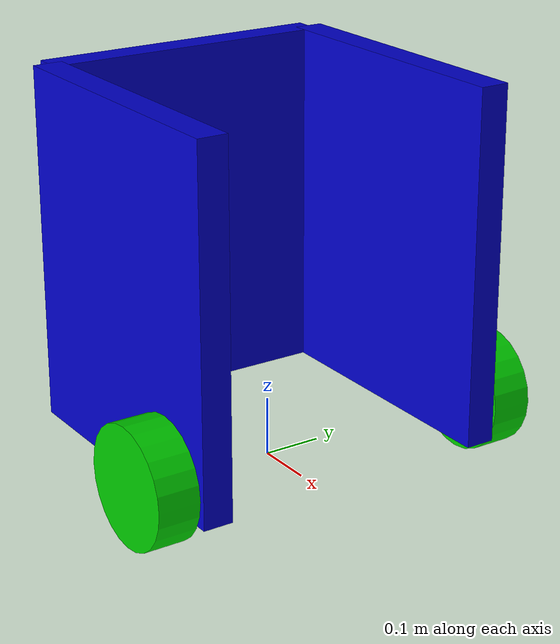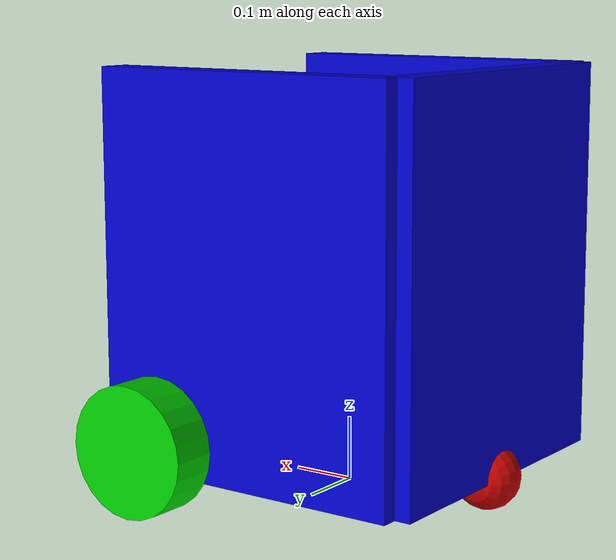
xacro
<?xml version="1.0"?>
<robot name="myrobot">

    <material name="blue">
        <color rgba="0 0 0.8 1"/>
    </material>

    <material name="white">
        <color rgba="1 1 1 1"/>
    </material>

    <material name="green">
        <color rgba="0 0.8 0 1"/>
    </material>

    <material name="red">
        <color rgba="0.8 0 0 1"/>
    </material>

    <link name = "base_link">
        <inertial>
            <origin xyz="0 0 0" rpy="0 0 0"/>
            <mass value="3.978"/>
            <inertia ixx="0.021858680" ixy="0.0" ixz="0.010020353"
                    iyy="0.078572349" iyz="-0.0"
                    izz="0.091971324"/>
        </inertial>

        <!--Right Panel-->
        <visual>
            <origin xyz="0 -0.25 0.35" rpy="0 0 0" />
            <geometry>
                <box size="0.5 0.05 0.6" />
            </geometry>
            <material name="blue" />
        </visual>
        <collision>
            <origin xyz="0 -0.25 0.35" rpy="0 0 0" />
            <geometry>
                <box size="0.5 0.05 0.6" />
            </geometry>
            <material name="blue" />
        </collision>

        <!--Left Panel-->
        <visual>
            <origin xyz="0 0.25 0.35" rpy="0 0 0" />
            <geometry>
                <box size="0.5 0.05 0.6" />
            </geometry>
            <material name="blue" />
        </visual>
        <collision>
            <origin xyz="0 0.25 0.35" rpy="0 0 0" />
            <geometry>
                <box size="0.5 0.05 0.6" />
            </geometry>
            <material name="blue" />
        </collision>

        <!--Back Panel-->
        <visual>
            <origin xyz="-0.25 0 0.35" rpy="0 0 1.57" />
            <geometry>
                <box size="0.5 0.05 0.6" />
            </geometry>
            <material name="blue" />
        </visual>
        <collision>
            <origin xyz="-0.25 0 0.35" rpy="0 0 1.57" />
            <geometry>
                <box size="0.5 0.05 0.6" />
            </geometry>
            <material name="blue" />
        </collision>
    </link>

    <!--Right Wheel-->
    <link name="right_wheel">
        <visual>
            <geometry>
                <cylinder length="0.070" radius="0.1"/>
            </geometry>
            <origin rpy="1.57075 0 0" xyz="0 0 0"/>
            <material name="green"/>
        </visual>
        <collision>
            <origin rpy="1.57075 0 0" xyz="0 0 0" />
            <geometry>
                <cylinder length="0.070" radius="0.1"/>
            </geometry>
            <material name="green" />
        </collision>
         <inertial>
            <origin xyz="0 0 0" rpy="0 0 0"/>
            <mass value="3.978"/>
            <inertia ixx="0.021858680" ixy="0.0" ixz="0.010020353"
                    iyy="0.078572349" iyz="-0.0"
                    izz="0.091971324"/>
        </inertial>

    </link>

    <joint name = "right_wheel_joint"  type = "continuous">
        <parent link="base_link"/>
        <child link="right_wheel"/>
        <origin xyz="0.15 0.315 0.1" rpy="0 0 0" />
        <axis xyz="0 1 0" rpy="0 0 0" />
    </joint>

    <!--Left Wheel-->
    <link name="left_wheel">
        <visual>
            <geometry>
                <cylinder length="0.070" radius="0.1"/>
            </geometry>
            <origin rpy="1.57075 0 0" xyz="0 0 0"/>
            <material name="green"/>
        </visual>
        <collision>
            <origin rpy="1.57075 0 0" xyz="0 0 0" />
            <geometry>
                <cylinder length="0.070" radius="0.1"/>
            </geometry>
            <material name="green" />
        </collision>
         <inertial>
            <origin xyz="0 0 0" rpy="0 0 0"/>
            <mass value="3.978"/>
            <inertia ixx="0.021858680" ixy="0.0" ixz="0.010020353"
                    iyy="0.078572349" iyz="-0.0"
                    izz="0.091971324"/>
        </inertial>

    </link>

    <joint name = "left_wheel_joint"  type = "continuous">
        <parent link="base_link"/>
        <child link="left_wheel"/>
        <origin xyz="0.15 -0.315 0.1" rpy="0 0 0" />
        <axis xyz="0 1 0" rpy="0 0 0" />
    </joint>

    <!--Caster wheel-->
    <link name="caster">
        <visual>
            <geometry>
                <sphere radius="0.05"/>
            </geometry>
            <origin rpy="1.57075 0 0" xyz="0 0 0"/>
            <material name="red"/>
        </visual>
        <collision>
            <origin rpy="1.57075 0 0" xyz="0 0 0" />
            <geometry>
                <sphere radius="0.05"/>
            </geometry>
            <material name="red" />
        </collision>
    </link>

    <joint name = "caster_joint"  type = "fixed">
        <parent link="base_link"/>
        <child link="caster"/>
        <origin xyz="-0.25 0 0.05" rpy="0 0 0" />
        <axis xyz="0 1 0" rpy="0 0 0" />
    </joint>

  <gazebo>
    <plugin name="differential_drive_controller" filename="libgazebo_ros_diff_drive.so">
      <alwaysOn>false</alwaysOn>
      <legacyMode>false</legacyMode>
      <updateRate>20</updateRate>
      <leftJoint>left_wheel_joint</leftJoint>
      <rightJoint>right_wheel_joint</rightJoint>
      <wheelSeparation>0.62</wheelSeparation>
      <wheelDiameter>0.2</wheelDiameter>
      <torque>20</torque>
      <commandTopic>/rover/cmd_vel</commandTopic>
      <odometryTopic>/rover/odom</odometryTopic>
      <odometryFrame>odom</odometryFrame>
      <robotBaseFrame>base_link</robotBaseFrame>
    </plugin>
  </gazebo>

</robot>
